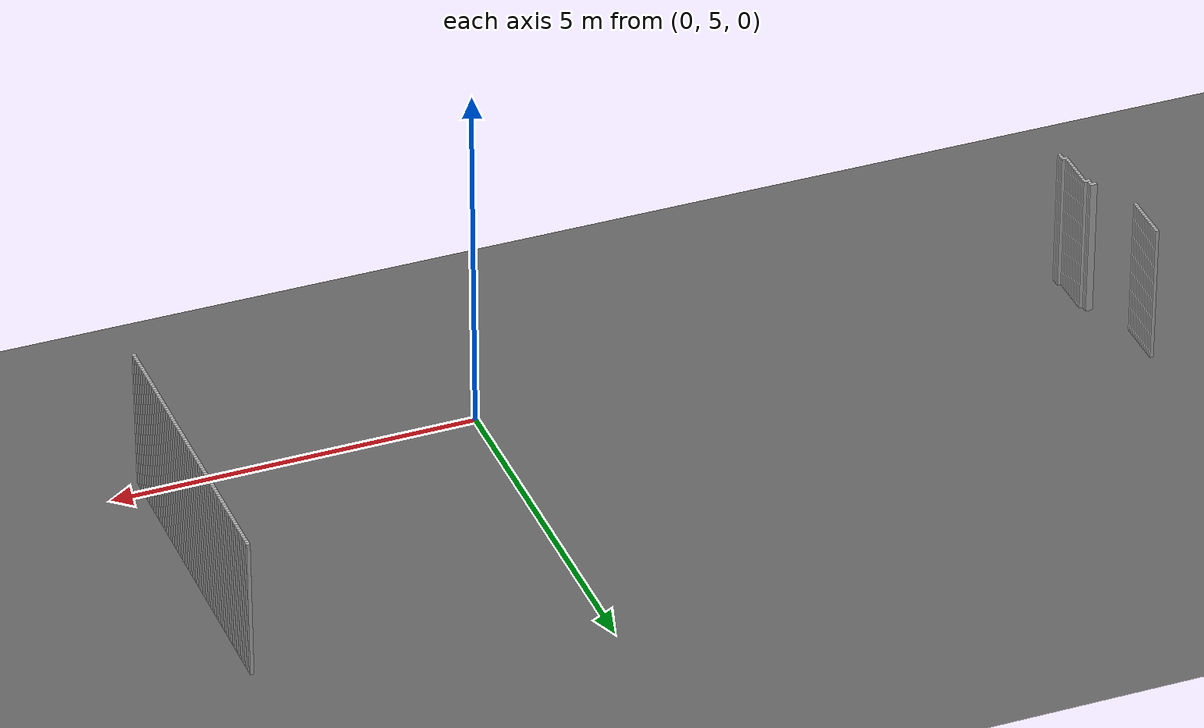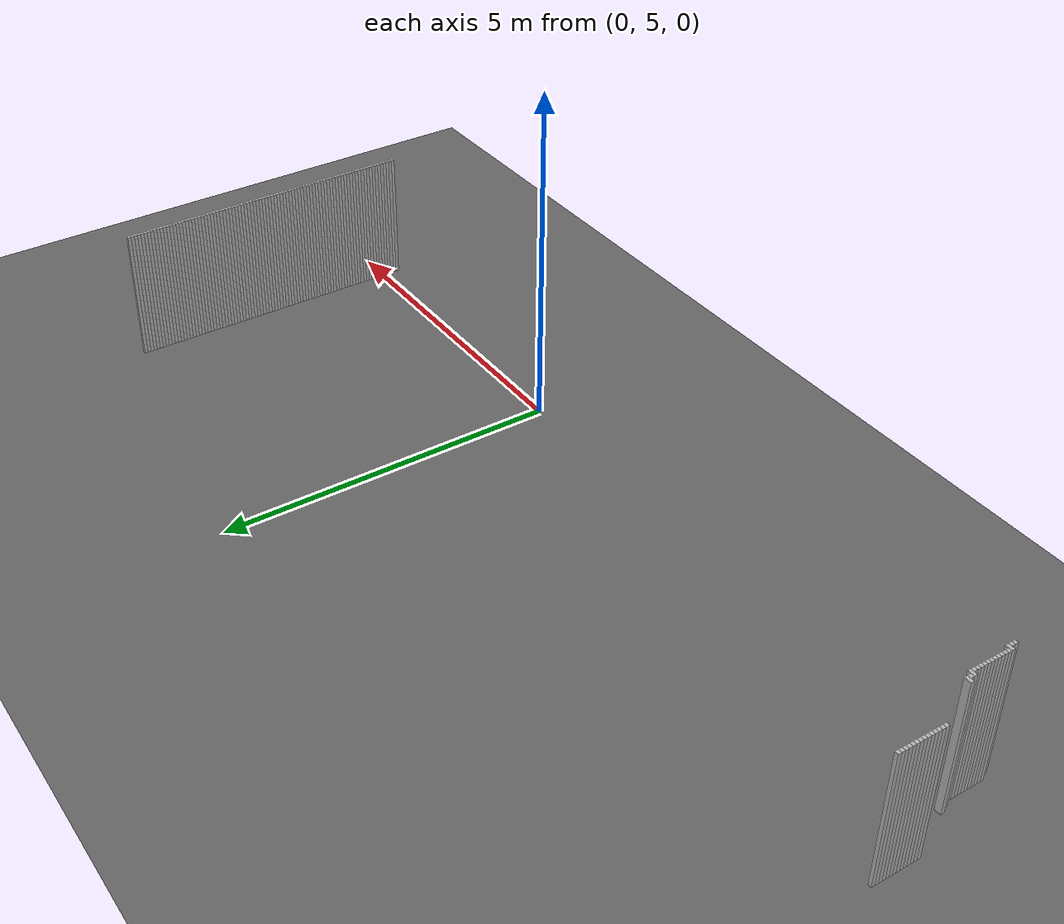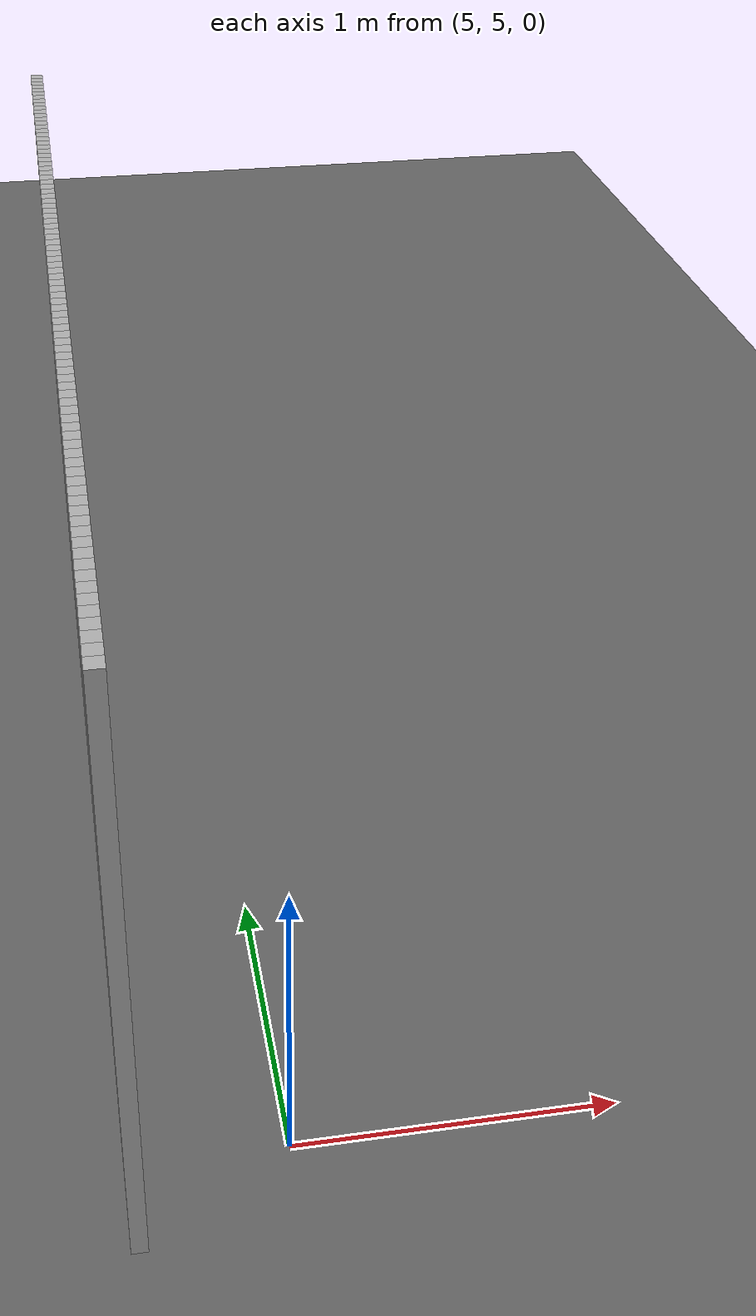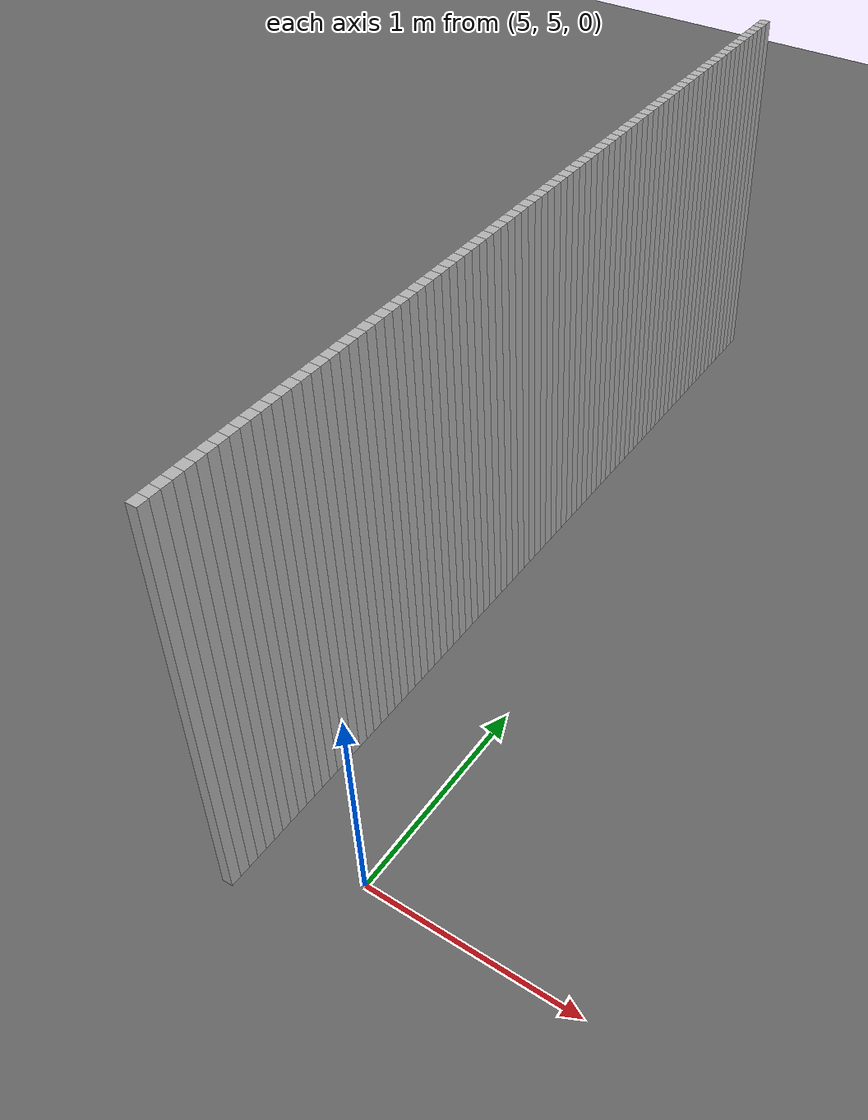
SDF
<sdf version="1.8">
 <world name="real_map">
  <model name="ground">
   <static>true</static>
   <link name="l">
    <collision name="c"><geometry><plane><normal>0 0 1</normal><size>100 100</size></plane></geometry></collision>
    <visual name="v">
     <geometry><plane><normal>0 0 1</normal><size>100 100</size></plane></geometry>
     <material><ambient>0.3 0.3 0.3 1</ambient><diffuse>0.4 0.4 0.4 1</diffuse></material>
    </visual>
   </link>
  </model>
  <model name="walls">
   <static>true</static>
   <link name="w480">
    <pose>4.534 9.142 1.000 0 0 0</pose>
    <collision name="c"><geometry><box><size>0.050 0.050 2.000</size></box></geometry></collision>
    <visual name="v">
     <geometry><box><size>0.050 0.050 2.000</size></box></geometry>
     <material><ambient>0.7 0.7 0.7 1</ambient><diffuse>0.7 0.7 0.7 1</diffuse></material>
    </visual>
   </link>
   <link name="w482">
    <pose>4.534 9.092 1.000 0 0 0</pose>
    <collision name="c"><geometry><box><size>0.050 0.050 2.000</size></box></geometry></collision>
    <visual name="v">
     <geometry><box><size>0.050 0.050 2.000</size></box></geometry>
     <material><ambient>0.7 0.7 0.7 1</ambient><diffuse>0.7 0.7 0.7 1</diffuse></material>
    </visual>
   </link>
   <link name="w484">
    <pose>4.534 9.042 1.000 0 0 0</pose>
    <collision name="c"><geometry><box><size>0.050 0.050 2.000</size></box></geometry></collision>
    <visual name="v">
     <geometry><box><size>0.050 0.050 2.000</size></box></geometry>
     <material><ambient>0.7 0.7 0.7 1</ambient><diffuse>0.7 0.7 0.7 1</diffuse></material>
    </visual>
   </link>
   <link name="w486">
    <pose>4.534 8.992 1.000 0 0 0</pose>
    <collision name="c"><geometry><box><size>0.050 0.050 2.000</size></box></geometry></collision>
    <visual name="v">
     <geometry><box><size>0.050 0.050 2.000</size></box></geometry>
     <material><ambient>0.7 0.7 0.7 1</ambient><diffuse>0.7 0.7 0.7 1</diffuse></material>
    </visual>
   </link>
   <link name="w488">
    <pose>4.534 8.942 1.000 0 0 0</pose>
    <collision name="c"><geometry><box><size>0.050 0.050 2.000</size></box></geometry></collision>
    <visual name="v">
     <geometry><box><size>0.050 0.050 2.000</size></box></geometry>
     <material><ambient>0.7 0.7 0.7 1</ambient><diffuse>0.7 0.7 0.7 1</diffuse></material>
    </visual>
   </link>
   <link name="w490">
    <pose>4.534 8.892 1.000 0 0 0</pose>
    <collision name="c"><geometry><box><size>0.050 0.050 2.000</size></box></geometry></collision>
    <visual name="v">
     <geometry><box><size>0.050 0.050 2.000</size></box></geometry>
     <material><ambient>0.7 0.7 0.7 1</ambient><diffuse>0.7 0.7 0.7 1</diffuse></material>
    </visual>
   </link>
   <link name="w492">
    <pose>4.534 8.842 1.000 0 0 0</pose>
    <collision name="c"><geometry><box><size>0.050 0.050 2.000</size></box></geometry></collision>
    <visual name="v">
     <geometry><box><size>0.050 0.050 2.000</size></box></geometry>
     <material><ambient>0.7 0.7 0.7 1</ambient><diffuse>0.7 0.7 0.7 1</diffuse></material>
    </visual>
   </link>
   <link name="w495">
    <pose>4.534 8.792 1.000 0 0 0</pose>
    <collision name="c"><geometry><box><size>0.050 0.050 2.000</size></box></geometry></collision>
    <visual name="v">
     <geometry><box><size>0.050 0.050 2.000</size></box></geometry>
     <material><ambient>0.7 0.7 0.7 1</ambient><diffuse>0.7 0.7 0.7 1</diffuse></material>
    </visual>
   </link>
   <link name="w500">
    <pose>4.534 8.742 1.000 0 0 0</pose>
    <collision name="c"><geometry><box><size>0.050 0.050 2.000</size></box></geometry></collision>
    <visual name="v">
     <geometry><box><size>0.050 0.050 2.000</size></box></geometry>
     <material><ambient>0.7 0.7 0.7 1</ambient><diffuse>0.7 0.7 0.7 1</diffuse></material>
    </visual>
   </link>
   <link name="w505">
    <pose>4.534 8.692 1.000 0 0 0</pose>
    <collision name="c"><geometry><box><size>0.050 0.050 2.000</size></box></geometry></collision>
    <visual name="v">
     <geometry><box><size>0.050 0.050 2.000</size></box></geometry>
     <material><ambient>0.7 0.7 0.7 1</ambient><diffuse>0.7 0.7 0.7 1</diffuse></material>
    </visual>
   </link>
   <link name="w510">
    <pose>4.534 8.642 1.000 0 0 0</pose>
    <collision name="c"><geometry><box><size>0.050 0.050 2.000</size></box></geometry></collision>
    <visual name="v">
     <geometry><box><size>0.050 0.050 2.000</size></box></geometry>
     <material><ambient>0.7 0.7 0.7 1</ambient><diffuse>0.7 0.7 0.7 1</diffuse></material>
    </visual>
   </link>
   <link name="w514">
    <pose>4.534 8.592 1.000 0 0 0</pose>
    <collision name="c"><geometry><box><size>0.050 0.050 2.000</size></box></geometry></collision>
    <visual name="v">
     <geometry><box><size>0.050 0.050 2.000</size></box></geometry>
     <material><ambient>0.7 0.7 0.7 1</ambient><diffuse>0.7 0.7 0.7 1</diffuse></material>
    </visual>
   </link>
   <link name="w518">
    <pose>4.534 8.542 1.000 0 0 0</pose>
    <collision name="c"><geometry><box><size>0.050 0.050 2.000</size></box></geometry></collision>
    <visual name="v">
     <geometry><box><size>0.050 0.050 2.000</size></box></geometry>
     <material><ambient>0.7 0.7 0.7 1</ambient><diffuse>0.7 0.7 0.7 1</diffuse></material>
    </visual>
   </link>
   <link name="w522">
    <pose>4.534 8.492 1.000 0 0 0</pose>
    <collision name="c"><geometry><box><size>0.050 0.050 2.000</size></box></geometry></collision>
    <visual name="v">
     <geometry><box><size>0.050 0.050 2.000</size></box></geometry>
     <material><ambient>0.7 0.7 0.7 1</ambient><diffuse>0.7 0.7 0.7 1</diffuse></material>
    </visual>
   </link>
   <link name="w526">
    <pose>4.534 8.442 1.000 0 0 0</pose>
    <collision name="c"><geometry><box><size>0.050 0.050 2.000</size></box></geometry></collision>
    <visual name="v">
     <geometry><box><size>0.050 0.050 2.000</size></box></geometry>
     <material><ambient>0.7 0.7 0.7 1</ambient><diffuse>0.7 0.7 0.7 1</diffuse></material>
    </visual>
   </link>
   <link name="w530">
    <pose>4.534 8.392 1.000 0 0 0</pose>
    <collision name="c"><geometry><box><size>0.050 0.050 2.000</size></box></geometry></collision>
    <visual name="v">
     <geometry><box><size>0.050 0.050 2.000</size></box></geometry>
     <material><ambient>0.7 0.7 0.7 1</ambient><diffuse>0.7 0.7 0.7 1</diffuse></material>
    </visual>
   </link>
   <link name="w534">
    <pose>4.534 8.342 1.000 0 0 0</pose>
    <collision name="c"><geometry><box><size>0.050 0.050 2.000</size></box></geometry></collision>
    <visual name="v">
     <geometry><box><size>0.050 0.050 2.000</size></box></geometry>
     <material><ambient>0.7 0.7 0.7 1</ambient><diffuse>0.7 0.7 0.7 1</diffuse></material>
    </visual>
   </link>
   <link name="w538">
    <pose>4.534 8.292 1.000 0 0 0</pose>
    <collision name="c"><geometry><box><size>0.050 0.050 2.000</size></box></geometry></collision>
    <visual name="v">
     <geometry><box><size>0.050 0.050 2.000</size></box></geometry>
     <material><ambient>0.7 0.7 0.7 1</ambient><diffuse>0.7 0.7 0.7 1</diffuse></material>
    </visual>
   </link>
   <link name="w542">
    <pose>4.534 8.242 1.000 0 0 0</pose>
    <collision name="c"><geometry><box><size>0.050 0.050 2.000</size></box></geometry></collision>
    <visual name="v">
     <geometry><box><size>0.050 0.050 2.000</size></box></geometry>
     <material><ambient>0.7 0.7 0.7 1</ambient><diffuse>0.7 0.7 0.7 1</diffuse></material>
    </visual>
   </link>
   <link name="w546">
    <pose>4.534 8.192 1.000 0 0 0</pose>
    <collision name="c"><geometry><box><size>0.050 0.050 2.000</size></box></geometry></collision>
    <visual name="v">
     <geometry><box><size>0.050 0.050 2.000</size></box></geometry>
     <material><ambient>0.7 0.7 0.7 1</ambient><diffuse>0.7 0.7 0.7 1</diffuse></material>
    </visual>
   </link>
   <link name="w550">
    <pose>4.534 8.142 1.000 0 0 0</pose>
    <collision name="c"><geometry><box><size>0.050 0.050 2.000</size></box></geometry></collision>
    <visual name="v">
     <geometry><box><size>0.050 0.050 2.000</size></box></geometry>
     <material><ambient>0.7 0.7 0.7 1</ambient><diffuse>0.7 0.7 0.7 1</diffuse></material>
    </visual>
   </link>
   <link name="w554">
    <pose>4.534 8.092 1.000 0 0 0</pose>
    <collision name="c"><geometry><box><size>0.050 0.050 2.000</size></box></geometry></collision>
    <visual name="v">
     <geometry><box><size>0.050 0.050 2.000</size></box></geometry>
     <material><ambient>0.7 0.7 0.7 1</ambient><diffuse>0.7 0.7 0.7 1</diffuse></material>
    </visual>
   </link>
   <link name="w558">
    <pose>4.534 8.042 1.000 0 0 0</pose>
    <collision name="c"><geometry><box><size>0.050 0.050 2.000</size></box></geometry></collision>
    <visual name="v">
     <geometry><box><size>0.050 0.050 2.000</size></box></geometry>
     <material><ambient>0.7 0.7 0.7 1</ambient><diffuse>0.7 0.7 0.7 1</diffuse></material>
    </visual>
   </link>
   <link name="w562">
    <pose>4.534 7.992 1.000 0 0 0</pose>
    <collision name="c"><geometry><box><size>0.050 0.050 2.000</size></box></geometry></collision>
    <visual name="v">
     <geometry><box><size>0.050 0.050 2.000</size></box></geometry>
     <material><ambient>0.7 0.7 0.7 1</ambient><diffuse>0.7 0.7 0.7 1</diffuse></material>
    </visual>
   </link>
   <link name="w566">
    <pose>4.534 7.942 1.000 0 0 0</pose>
    <collision name="c"><geometry><box><size>0.050 0.050 2.000</size></box></geometry></collision>
    <visual name="v">
     <geometry><box><size>0.050 0.050 2.000</size></box></geometry>
     <material><ambient>0.7 0.7 0.7 1</ambient><diffuse>0.7 0.7 0.7 1</diffuse></material>
    </visual>
   </link>
   <link name="w570">
    <pose>4.534 7.892 1.000 0 0 0</pose>
    <collision name="c"><geometry><box><size>0.050 0.050 2.000</size></box></geometry></collision>
    <visual name="v">
     <geometry><box><size>0.050 0.050 2.000</size></box></geometry>
     <material><ambient>0.7 0.7 0.7 1</ambient><diffuse>0.7 0.7 0.7 1</diffuse></material>
    </visual>
   </link>
   <link name="w574">
    <pose>4.534 7.842 1.000 0 0 0</pose>
    <collision name="c"><geometry><box><size>0.050 0.050 2.000</size></box></geometry></collision>
    <visual name="v">
     <geometry><box><size>0.050 0.050 2.000</size></box></geometry>
     <material><ambient>0.7 0.7 0.7 1</ambient><diffuse>0.7 0.7 0.7 1</diffuse></material>
    </visual>
   </link>
   <link name="w578">
    <pose>4.534 7.792 1.000 0 0 0</pose>
    <collision name="c"><geometry><box><size>0.050 0.050 2.000</size></box></geometry></collision>
    <visual name="v">
     <geometry><box><size>0.050 0.050 2.000</size></box></geometry>
     <material><ambient>0.7 0.7 0.7 1</ambient><diffuse>0.7 0.7 0.7 1</diffuse></material>
    </visual>
   </link>
   <link name="w582">
    <pose>4.534 7.742 1.000 0 0 0</pose>
    <collision name="c"><geometry><box><size>0.050 0.050 2.000</size></box></geometry></collision>
    <visual name="v">
     <geometry><box><size>0.050 0.050 2.000</size></box></geometry>
     <material><ambient>0.7 0.7 0.7 1</ambient><diffuse>0.7 0.7 0.7 1</diffuse></material>
    </visual>
   </link>
   <link name="w586">
    <pose>4.534 7.692 1.000 0 0 0</pose>
    <collision name="c"><geometry><box><size>0.050 0.050 2.000</size></box></geometry></collision>
    <visual name="v">
     <geometry><box><size>0.050 0.050 2.000</size></box></geometry>
     <material><ambient>0.7 0.7 0.7 1</ambient><diffuse>0.7 0.7 0.7 1</diffuse></material>
    </visual>
   </link>
   <link name="w590">
    <pose>4.534 7.642 1.000 0 0 0</pose>
    <collision name="c"><geometry><box><size>0.050 0.050 2.000</size></box></geometry></collision>
    <visual name="v">
     <geometry><box><size>0.050 0.050 2.000</size></box></geometry>
     <material><ambient>0.7 0.7 0.7 1</ambient><diffuse>0.7 0.7 0.7 1</diffuse></material>
    </visual>
   </link>
   <link name="w594">
    <pose>4.534 7.592 1.000 0 0 0</pose>
    <collision name="c"><geometry><box><size>0.050 0.050 2.000</size></box></geometry></collision>
    <visual name="v">
     <geometry><box><size>0.050 0.050 2.000</size></box></geometry>
     <material><ambient>0.7 0.7 0.7 1</ambient><diffuse>0.7 0.7 0.7 1</diffuse></material>
    </visual>
   </link>
   <link name="w598">
    <pose>4.534 7.542 1.000 0 0 0</pose>
    <collision name="c"><geometry><box><size>0.050 0.050 2.000</size></box></geometry></collision>
    <visual name="v">
     <geometry><box><size>0.050 0.050 2.000</size></box></geometry>
     <material><ambient>0.7 0.7 0.7 1</ambient><diffuse>0.7 0.7 0.7 1</diffuse></material>
    </visual>
   </link>
   <link name="w602">
    <pose>4.534 7.492 1.000 0 0 0</pose>
    <collision name="c"><geometry><box><size>0.050 0.050 2.000</size></box></geometry></collision>
    <visual name="v">
     <geometry><box><size>0.050 0.050 2.000</size></box></geometry>
     <material><ambient>0.7 0.7 0.7 1</ambient><diffuse>0.7 0.7 0.7 1</diffuse></material>
    </visual>
   </link>
   <link name="w606">
    <pose>4.534 7.442 1.000 0 0 0</pose>
    <collision name="c"><geometry><box><size>0.050 0.050 2.000</size></box></geometry></collision>
    <visual name="v">
     <geometry><box><size>0.050 0.050 2.000</size></box></geometry>
     <material><ambient>0.7 0.7 0.7 1</ambient><diffuse>0.7 0.7 0.7 1</diffuse></material>
    </visual>
   </link>
   <link name="w610">
    <pose>4.534 7.392 1.000 0 0 0</pose>
    <collision name="c"><geometry><box><size>0.050 0.050 2.000</size></box></geometry></collision>
    <visual name="v">
     <geometry><box><size>0.050 0.050 2.000</size></box></geometry>
     <material><ambient>0.7 0.7 0.7 1</ambient><diffuse>0.7 0.7 0.7 1</diffuse></material>
    </visual>
   </link>
   <link name="w615">
    <pose>4.534 7.342 1.000 0 0 0</pose>
    <collision name="c"><geometry><box><size>0.050 0.050 2.000</size></box></geometry></collision>
    <visual name="v">
     <geometry><box><size>0.050 0.050 2.000</size></box></geometry>
     <material><ambient>0.7 0.7 0.7 1</ambient><diffuse>0.7 0.7 0.7 1</diffuse></material>
    </visual>
   </link>
   <link name="w620">
    <pose>4.534 7.292 1.000 0 0 0</pose>
    <collision name="c"><geometry><box><size>0.050 0.050 2.000</size></box></geometry></collision>
    <visual name="v">
     <geometry><box><size>0.050 0.050 2.000</size></box></geometry>
     <material><ambient>0.7 0.7 0.7 1</ambient><diffuse>0.7 0.7 0.7 1</diffuse></material>
    </visual>
   </link>
   <link name="w625">
    <pose>4.534 7.242 1.000 0 0 0</pose>
    <collision name="c"><geometry><box><size>0.050 0.050 2.000</size></box></geometry></collision>
    <visual name="v">
     <geometry><box><size>0.050 0.050 2.000</size></box></geometry>
     <material><ambient>0.7 0.7 0.7 1</ambient><diffuse>0.7 0.7 0.7 1</diffuse></material>
    </visual>
   </link>
   <link name="w630">
    <pose>4.534 7.192 1.000 0 0 0</pose>
    <collision name="c"><geometry><box><size>0.050 0.050 2.000</size></box></geometry></collision>
    <visual name="v">
     <geometry><box><size>0.050 0.050 2.000</size></box></geometry>
     <material><ambient>0.7 0.7 0.7 1</ambient><diffuse>0.7 0.7 0.7 1</diffuse></material>
    </visual>
   </link>
   <link name="w635">
    <pose>4.534 7.142 1.000 0 0 0</pose>
    <collision name="c"><geometry><box><size>0.050 0.050 2.000</size></box></geometry></collision>
    <visual name="v">
     <geometry><box><size>0.050 0.050 2.000</size></box></geometry>
     <material><ambient>0.7 0.7 0.7 1</ambient><diffuse>0.7 0.7 0.7 1</diffuse></material>
    </visual>
   </link>
   <link name="w640">
    <pose>4.534 7.092 1.000 0 0 0</pose>
    <collision name="c"><geometry><box><size>0.050 0.050 2.000</size></box></geometry></collision>
    <visual name="v">
     <geometry><box><size>0.050 0.050 2.000</size></box></geometry>
     <material><ambient>0.7 0.7 0.7 1</ambient><diffuse>0.7 0.7 0.7 1</diffuse></material>
    </visual>
   </link>
   <link name="w645">
    <pose>4.534 7.042 1.000 0 0 0</pose>
    <collision name="c"><geometry><box><size>0.050 0.050 2.000</size></box></geometry></collision>
    <visual name="v">
     <geometry><box><size>0.050 0.050 2.000</size></box></geometry>
     <material><ambient>0.7 0.7 0.7 1</ambient><diffuse>0.7 0.7 0.7 1</diffuse></material>
    </visual>
   </link>
   <link name="w650">
    <pose>4.534 6.992 1.000 0 0 0</pose>
    <collision name="c"><geometry><box><size>0.050 0.050 2.000</size></box></geometry></collision>
    <visual name="v">
     <geometry><box><size>0.050 0.050 2.000</size></box></geometry>
     <material><ambient>0.7 0.7 0.7 1</ambient><diffuse>0.7 0.7 0.7 1</diffuse></material>
    </visual>
   </link>
   <link name="w655">
    <pose>4.534 6.942 1.000 0 0 0</pose>
    <collision name="c"><geometry><box><size>0.050 0.050 2.000</size></box></geometry></collision>
    <visual name="v">
     <geometry><box><size>0.050 0.050 2.000</size></box></geometry>
     <material><ambient>0.7 0.7 0.7 1</ambient><diffuse>0.7 0.7 0.7 1</diffuse></material>
    </visual>
   </link>
   <link name="w660">
    <pose>4.534 6.892 1.000 0 0 0</pose>
    <collision name="c"><geometry><box><size>0.050 0.050 2.000</size></box></geometry></collision>
    <visual name="v">
     <geometry><box><size>0.050 0.050 2.000</size></box></geometry>
     <material><ambient>0.7 0.7 0.7 1</ambient><diffuse>0.7 0.7 0.7 1</diffuse></material>
    </visual>
   </link>
   <link name="w664">
    <pose>-8.816 6.842 1.000 0 0 0</pose>
    <collision name="c"><geometry><box><size>0.050 0.050 2.000</size></box></geometry></collision>
    <visual name="v">
     <geometry><box><size>0.050 0.050 2.000</size></box></geometry>
     <material><ambient>0.7 0.7 0.7 1</ambient><diffuse>0.7 0.7 0.7 1</diffuse></material>
    </visual>
   </link>
   <link name="w665">
    <pose>4.534 6.842 1.000 0 0 0</pose>
    <collision name="c"><geometry><box><size>0.050 0.050 2.000</size></box></geometry></collision>
    <visual name="v">
     <geometry><box><size>0.050 0.050 2.000</size></box></geometry>
     <material><ambient>0.7 0.7 0.7 1</ambient><diffuse>0.7 0.7 0.7 1</diffuse></material>
    </visual>
   </link>
   <link name="w669">
    <pose>-8.816 6.792 1.000 0 0 0</pose>
    <collision name="c"><geometry><box><size>0.050 0.050 2.000</size></box></geometry></collision>
    <visual name="v">
     <geometry><box><size>0.050 0.050 2.000</size></box></geometry>
     <material><ambient>0.7 0.7 0.7 1</ambient><diffuse>0.7 0.7 0.7 1</diffuse></material>
    </visual>
   </link>
   <link name="w670">
    <pose>4.534 6.792 1.000 0 0 0</pose>
    <collision name="c"><geometry><box><size>0.050 0.050 2.000</size></box></geometry></collision>
    <visual name="v">
     <geometry><box><size>0.050 0.050 2.000</size></box></geometry>
     <material><ambient>0.7 0.7 0.7 1</ambient><diffuse>0.7 0.7 0.7 1</diffuse></material>
    </visual>
   </link>
   <link name="w674">
    <pose>-8.816 6.742 1.000 0 0 0</pose>
    <collision name="c"><geometry><box><size>0.050 0.050 2.000</size></box></geometry></collision>
    <visual name="v">
     <geometry><box><size>0.050 0.050 2.000</size></box></geometry>
     <material><ambient>0.7 0.7 0.7 1</ambient><diffuse>0.7 0.7 0.7 1</diffuse></material>
    </visual>
   </link>
   <link name="w675">
    <pose>4.534 6.742 1.000 0 0 0</pose>
    <collision name="c"><geometry><box><size>0.050 0.050 2.000</size></box></geometry></collision>
    <visual name="v">
     <geometry><box><size>0.050 0.050 2.000</size></box></geometry>
     <material><ambient>0.7 0.7 0.7 1</ambient><diffuse>0.7 0.7 0.7 1</diffuse></material>
    </visual>
   </link>
   <link name="w678">
    <pose>-8.816 6.692 1.000 0 0 0</pose>
    <collision name="c"><geometry><box><size>0.050 0.050 2.000</size></box></geometry></collision>
    <visual name="v">
     <geometry><box><size>0.050 0.050 2.000</size></box></geometry>
     <material><ambient>0.7 0.7 0.7 1</ambient><diffuse>0.7 0.7 0.7 1</diffuse></material>
    </visual>
   </link>
   <link name="w679">
    <pose>4.534 6.692 1.000 0 0 0</pose>
    <collision name="c"><geometry><box><size>0.050 0.050 2.000</size></box></geometry></collision>
    <visual name="v">
     <geometry><box><size>0.050 0.050 2.000</size></box></geometry>
     <material><ambient>0.7 0.7 0.7 1</ambient><diffuse>0.7 0.7 0.7 1</diffuse></material>
    </visual>
   </link>
   <link name="w682">
    <pose>-8.816 6.642 1.000 0 0 0</pose>
    <collision name="c"><geometry><box><size>0.050 0.050 2.000</size></box></geometry></collision>
    <visual name="v">
     <geometry><box><size>0.050 0.050 2.000</size></box></geometry>
     <material><ambient>0.7 0.7 0.7 1</ambient><diffuse>0.7 0.7 0.7 1</diffuse></material>
    </visual>
   </link>
   <link name="w683">
    <pose>4.534 6.642 1.000 0 0 0</pose>
    <collision name="c"><geometry><box><size>0.050 0.050 2.000</size></box></geometry></collision>
    <visual name="v">
     <geometry><box><size>0.050 0.050 2.000</size></box></geometry>
     <material><ambient>0.7 0.7 0.7 1</ambient><diffuse>0.7 0.7 0.7 1</diffuse></material>
    </visual>
   </link>
   <link name="w686">
    <pose>-8.816 6.592 1.000 0 0 0</pose>
    <collision name="c"><geometry><box><size>0.050 0.050 2.000</size></box></geometry></collision>
    <visual name="v">
     <geometry><box><size>0.050 0.050 2.000</size></box></geometry>
     <material><ambient>0.7 0.7 0.7 1</ambient><diffuse>0.7 0.7 0.7 1</diffuse></material>
    </visual>
   </link>
   <link name="w687">
    <pose>4.534 6.592 1.000 0 0 0</pose>
    <collision name="c"><geometry><box><size>0.050 0.050 2.000</size></box></geometry></collision>
    <visual name="v">
     <geometry><box><size>0.050 0.050 2.000</size></box></geometry>
     <material><ambient>0.7 0.7 0.7 1</ambient><diffuse>0.7 0.7 0.7 1</diffuse></material>
    </visual>
   </link>
   <link name="w690">
    <pose>-8.816 6.542 1.000 0 0 0</pose>
    <collision name="c"><geometry><box><size>0.050 0.050 2.000</size></box></geometry></collision>
    <visual name="v">
     <geometry><box><size>0.050 0.050 2.000</size></box></geometry>
     <material><ambient>0.7 0.7 0.7 1</ambient><diffuse>0.7 0.7 0.7 1</diffuse></material>
    </visual>
   </link>
   <link name="w691">
    <pose>4.534 6.542 1.000 0 0 0</pose>
    <collision name="c"><geometry><box><size>0.050 0.050 2.000</size></box></geometry></collision>
    <visual name="v">
     <geometry><box><size>0.050 0.050 2.000</size></box></geometry>
     <material><ambient>0.7 0.7 0.7 1</ambient><diffuse>0.7 0.7 0.7 1</diffuse></material>
    </visual>
   </link>
   <link name="w694">
    <pose>-8.816 6.492 1.000 0 0 0</pose>
    <collision name="c"><geometry><box><size>0.050 0.050 2.000</size></box></geometry></collision>
    <visual name="v">
     <geometry><box><size>0.050 0.050 2.000</size></box></geometry>
     <material><ambient>0.7 0.7 0.7 1</ambient><diffuse>0.7 0.7 0.7 1</diffuse></material>
    </visual>
   </link>
   <link name="w695">
    <pose>4.534 6.492 1.000 0 0 0</pose>
    <collision name="c"><geometry><box><size>0.050 0.050 2.000</size></box></geometry></collision>
    <visual name="v">
     <geometry><box><size>0.050 0.050 2.000</size></box></geometry>
     <material><ambient>0.7 0.7 0.7 1</ambient><diffuse>0.7 0.7 0.7 1</diffuse></material>
    </visual>
   </link>
   <link name="w698">
    <pose>-8.816 6.442 1.000 0 0 0</pose>
    <collision name="c"><geometry><box><size>0.050 0.050 2.000</size></box></geometry></collision>
    <visual name="v">
     <geometry><box><size>0.050 0.050 2.000</size></box></geometry>
     <material><ambient>0.7 0.7 0.7 1</ambient><diffuse>0.7 0.7 0.7 1</diffuse></material>
    </visual>
   </link>
   <link name="w699">
    <pose>4.534 6.442 1.000 0 0 0</pose>
    <collision name="c"><geometry><box><size>0.050 0.050 2.000</size></box></geometry></collision>
    <visual name="v">
     <geometry><box><size>0.050 0.050 2.000</size></box></geometry>
     <material><ambient>0.7 0.7 0.7 1</ambient><diffuse>0.7 0.7 0.7 1</diffuse></material>
    </visual>
   </link>
   <link name="w702">
    <pose>-8.816 6.392 1.000 0 0 0</pose>
    <collision name="c"><geometry><box><size>0.050 0.050 2.000</size></box></geometry></collision>
    <visual name="v">
     <geometry><box><size>0.050 0.050 2.000</size></box></geometry>
     <material><ambient>0.7 0.7 0.7 1</ambient><diffuse>0.7 0.7 0.7 1</diffuse></material>
    </visual>
   </link>
   <link name="w703">
    <pose>4.534 6.392 1.000 0 0 0</pose>
    <collision name="c"><geometry><box><size>0.050 0.050 2.000</size></box></geometry></collision>
    <visual name="v">
     <geometry><box><size>0.050 0.050 2.000</size></box></geometry>
     <material><ambient>0.7 0.7 0.7 1</ambient><diffuse>0.7 0.7 0.7 1</diffuse></material>
    </visual>
   </link>
   <link name="w706">
    <pose>-8.816 6.342 1.000 0 0 0</pose>
    <collision name="c"><geometry><box><size>0.050 0.050 2.000</size></box></geometry></collision>
    <visual name="v">
     <geometry><box><size>0.050 0.050 2.000</size></box></geometry>
     <material><ambient>0.7 0.7 0.7 1</ambient><diffuse>0.7 0.7 0.7 1</diffuse></material>
    </visual>
   </link>
   <link name="w707">
    <pose>4.534 6.342 1.000 0 0 0</pose>
    <collision name="c"><geometry><box><size>0.050 0.050 2.000</size></box></geometry></collision>
    <visual name="v">
     <geometry><box><size>0.050 0.050 2.000</size></box></geometry>
     <material><ambient>0.7 0.7 0.7 1</ambient><diffuse>0.7 0.7 0.7 1</diffuse></material>
    </visual>
   </link>
   <link name="w710">
    <pose>-8.816 6.292 1.000 0 0 0</pose>
    <collision name="c"><geometry><box><size>0.050 0.050 2.000</size></box></geometry></collision>
    <visual name="v">
     <geometry><box><size>0.050 0.050 2.000</size></box></geometry>
     <material><ambient>0.7 0.7 0.7 1</ambient><diffuse>0.7 0.7 0.7 1</diffuse></material>
    </visual>
   </link>
   <link name="w711">
    <pose>4.534 6.292 1.000 0 0 0</pose>
    <collision name="c"><geometry><box><size>0.050 0.050 2.000</size></box></geometry></collision>
    <visual name="v">
     <geometry><box><size>0.050 0.050 2.000</size></box></geometry>
     <material><ambient>0.7 0.7 0.7 1</ambient><diffuse>0.7 0.7 0.7 1</diffuse></material>
    </visual>
   </link>
   <link name="w714">
    <pose>-8.816 6.242 1.000 0 0 0</pose>
    <collision name="c"><geometry><box><size>0.050 0.050 2.000</size></box></geometry></collision>
    <visual name="v">
     <geometry><box><size>0.050 0.050 2.000</size></box></geometry>
     <material><ambient>0.7 0.7 0.7 1</ambient><diffuse>0.7 0.7 0.7 1</diffuse></material>
    </visual>
   </link>
   <link name="w715">
    <pose>4.534 6.242 1.000 0 0 0</pose>
    <collision name="c"><geometry><box><size>0.050 0.050 2.000</size></box></geometry></collision>
    <visual name="v">
     <geometry><box><size>0.050 0.050 2.000</size></box></geometry>
     <material><ambient>0.7 0.7 0.7 1</ambient><diffuse>0.7 0.7 0.7 1</diffuse></material>
    </visual>
   </link>
   <link name="w718">
    <pose>-8.816 6.192 1.000 0 0 0</pose>
    <collision name="c"><geometry><box><size>0.050 0.050 2.000</size></box></geometry></collision>
    <visual name="v">
     <geometry><box><size>0.050 0.050 2.000</size></box></geometry>
     <material><ambient>0.7 0.7 0.7 1</ambient><diffuse>0.7 0.7 0.7 1</diffuse></material>
    </visual>
   </link>
   <link name="w719">
    <pose>4.534 6.192 1.000 0 0 0</pose>
    <collision name="c"><geometry><box><size>0.050 0.050 2.000</size></box></geometry></collision>
    <visual name="v">
     <geometry><box><size>0.050 0.050 2.000</size></box></geometry>
     <material><ambient>0.7 0.7 0.7 1</ambient><diffuse>0.7 0.7 0.7 1</diffuse></material>
    </visual>
   </link>
   <link name="w723">
    <pose>4.534 6.142 1.000 0 0 0</pose>
    <collision name="c"><geometry><box><size>0.050 0.050 2.000</size></box></geometry></collision>
    <visual name="v">
     <geometry><box><size>0.050 0.050 2.000</size></box></geometry>
     <material><ambient>0.7 0.7 0.7 1</ambient><diffuse>0.7 0.7 0.7 1</diffuse></material>
    </visual>
   </link>
   <link name="w727">
    <pose>4.534 6.092 1.000 0 0 0</pose>
    <collision name="c"><geometry><box><size>0.050 0.050 2.000</size></box></geometry></collision>
    <visual name="v">
     <geometry><box><size>0.050 0.050 2.000</size></box></geometry>
     <material><ambient>0.7 0.7 0.7 1</ambient><diffuse>0.7 0.7 0.7 1</diffuse></material>
    </visual>
   </link>
   <link name="w731">
    <pose>4.534 6.042 1.000 0 0 0</pose>
    <collision name="c"><geometry><box><size>0.050 0.050 2.000</size></box></geometry></collision>
    <visual name="v">
     <geometry><box><size>0.050 0.050 2.000</size></box></geometry>
     <material><ambient>0.7 0.7 0.7 1</ambient><diffuse>0.7 0.7 0.7 1</diffuse></material>
    </visual>
   </link>
   <link name="w735">
    <pose>4.534 5.992 1.000 0 0 0</pose>
    <collision name="c"><geometry><box><size>0.050 0.050 2.000</size></box></geometry></collision>
    <visual name="v">
     <geometry><box><size>0.050 0.050 2.000</size></box></geometry>
     <material><ambient>0.7 0.7 0.7 1</ambient><diffuse>0.7 0.7 0.7 1</diffuse></material>
    </visual>
   </link>
   <link name="w739">
    <pose>4.534 5.942 1.000 0 0 0</pose>
    <collision name="c"><geometry><box><size>0.050 0.050 2.000</size></box></geometry></collision>
    <visual name="v">
     <geometry><box><size>0.050 0.050 2.000</size></box></geometry>
     <material><ambient>0.7 0.7 0.7 1</ambient><diffuse>0.7 0.7 0.7 1</diffuse></material>
    </visual>
   </link>
   <link name="w743">
    <pose>4.534 5.892 1.000 0 0 0</pose>
    <collision name="c"><geometry><box><size>0.050 0.050 2.000</size></box></geometry></collision>
    <visual name="v">
     <geometry><box><size>0.050 0.050 2.000</size></box></geometry>
     <material><ambient>0.7 0.7 0.7 1</ambient><diffuse>0.7 0.7 0.7 1</diffuse></material>
    </visual>
   </link>
   <link name="w747">
    <pose>4.534 5.842 1.000 0 0 0</pose>
    <collision name="c"><geometry><box><size>0.050 0.050 2.000</size></box></geometry></collision>
    <visual name="v">
     <geometry><box><size>0.050 0.050 2.000</size></box></geometry>
     <material><ambient>0.7 0.7 0.7 1</ambient><diffuse>0.7 0.7 0.7 1</diffuse></material>
    </visual>
   </link>
   <link name="w751">
    <pose>4.534 5.792 1.000 0 0 0</pose>
    <collision name="c"><geometry><box><size>0.050 0.050 2.000</size></box></geometry></collision>
    <visual name="v">
     <geometry><box><size>0.050 0.050 2.000</size></box></geometry>
     <material><ambient>0.7 0.7 0.7 1</ambient><diffuse>0.7 0.7 0.7 1</diffuse></material>
    </visual>
   </link>
   <link name="w755">
    <pose>4.534 5.742 1.000 0 0 0</pose>
    <collision name="c"><geometry><box><size>0.050 0.050 2.000</size></box></geometry></collision>
    <visual name="v">
     <geometry><box><size>0.050 0.050 2.000</size></box></geometry>
     <material><ambient>0.7 0.7 0.7 1</ambient><diffuse>0.7 0.7 0.7 1</diffuse></material>
    </visual>
   </link>
   <link name="w759">
    <pose>4.534 5.692 1.000 0 0 0</pose>
    <collision name="c"><geometry><box><size>0.050 0.050 2.000</size></box></geometry></collision>
    <visual name="v">
     <geometry><box><size>0.050 0.050 2.000</size></box></geometry>
     <material><ambient>0.7 0.7 0.7 1</ambient><diffuse>0.7 0.7 0.7 1</diffuse></material>
    </visual>
   </link>
   <link name="w763">
    <pose>4.534 5.642 1.000 0 0 0</pose>
    <collision name="c"><geometry><box><size>0.050 0.050 2.000</size></box></geometry></collision>
    <visual name="v">
     <geometry><box><size>0.050 0.050 2.000</size></box></geometry>
     <material><ambient>0.7 0.7 0.7 1</ambient><diffuse>0.7 0.7 0.7 1</diffuse></material>
    </visual>
   </link>
   <link name="w767">
    <pose>4.534 5.592 1.000 0 0 0</pose>
    <collision name="c"><geometry><box><size>0.050 0.050 2.000</size></box></geometry></collision>
    <visual name="v">
     <geometry><box><size>0.050 0.050 2.000</size></box></geometry>
     <material><ambient>0.7 0.7 0.7 1</ambient><diffuse>0.7 0.7 0.7 1</diffuse></material>
    </visual>
   </link>
   <link name="w771">
    <pose>-8.491 5.542 1.000 0 0 0</pose>
    <collision name="c"><geometry><box><size>0.100 0.050 2.000</size></box></geometry></collision>
    <visual name="v">
     <geometry><box><size>0.100 0.050 2.000</size></box></geometry>
     <material><ambient>0.7 0.7 0.7 1</ambient><diffuse>0.7 0.7 0.7 1</diffuse></material>
    </visual>
   </link>
   <link name="w772">
    <pose>4.534 5.542 1.000 0 0 0</pose>
    <collision name="c"><geometry><box><size>0.050 0.050 2.000</size></box></geometry></collision>
    <visual name="v">
     <geometry><box><size>0.050 0.050 2.000</size></box></geometry>
     <material><ambient>0.7 0.7 0.7 1</ambient><diffuse>0.7 0.7 0.7 1</diffuse></material>
    </visual>
   </link>
   <link name="w776">
    <pose>-8.466 5.492 1.000 0 0 0</pose>
    <collision name="c"><geometry><box><size>0.050 0.050 2.000</size></box></geometry></collision>
    <visual name="v">
     <geometry><box><size>0.050 0.050 2.000</size></box></geometry>
     <material><ambient>0.7 0.7 0.7 1</ambient><diffuse>0.7 0.7 0.7 1</diffuse></material>
    </visual>
   </link>
   <link name="w777">
    <pose>4.534 5.492 1.000 0 0 0</pose>
    <collision name="c"><geometry><box><size>0.050 0.050 2.000</size></box></geometry></collision>
    <visual name="v">
     <geometry><box><size>0.050 0.050 2.000</size></box></geometry>
     <material><ambient>0.7 0.7 0.7 1</ambient><diffuse>0.7 0.7 0.7 1</diffuse></material>
    </visual>
   </link>
   <link name="w780">
    <pose>-8.441 5.442 1.000 0 0 0</pose>
    <collision name="c"><geometry><box><size>0.100 0.050 2.000</size></box></geometry></collision>
    <visual name="v">
     <geometry><box><size>0.100 0.050 2.000</size></box></geometry>
     <material><ambient>0.7 0.7 0.7 1</ambient><diffuse>0.7 0.7 0.7 1</diffuse></material>
    </visual>
   </link>
   <link name="w781">
    <pose>4.534 5.442 1.000 0 0 0</pose>
    <collision name="c"><geometry><box><size>0.050 0.050 2.000</size></box></geometry></collision>
    <visual name="v">
     <geometry><box><size>0.050 0.050 2.000</size></box></geometry>
     <material><ambient>0.7 0.7 0.7 1</ambient><diffuse>0.7 0.7 0.7 1</diffuse></material>
    </visual>
   </link>
   <link name="w784">
    <pose>-8.416 5.392 1.000 0 0 0</pose>
    <collision name="c"><geometry><box><size>0.050 0.050 2.000</size></box></geometry></collision>
    <visual name="v">
     <geometry><box><size>0.050 0.050 2.000</size></box></geometry>
     <material><ambient>0.7 0.7 0.7 1</ambient><diffuse>0.7 0.7 0.7 1</diffuse></material>
    </visual>
   </link>
   <link name="w785">
    <pose>4.534 5.392 1.000 0 0 0</pose>
    <collision name="c"><geometry><box><size>0.050 0.050 2.000</size></box></geometry></collision>
    <visual name="v">
     <geometry><box><size>0.050 0.050 2.000</size></box></geometry>
     <material><ambient>0.7 0.7 0.7 1</ambient><diffuse>0.7 0.7 0.7 1</diffuse></material>
    </visual>
   </link>
   <link name="w788">
    <pose>-8.416 5.342 1.000 0 0 0</pose>
    <collision name="c"><geometry><box><size>0.050 0.050 2.000</size></box></geometry></collision>
    <visual name="v">
     <geometry><box><size>0.050 0.050 2.000</size></box></geometry>
     <material><ambient>0.7 0.7 0.7 1</ambient><diffuse>0.7 0.7 0.7 1</diffuse></material>
    </visual>
   </link>
   <link name="w789">
    <pose>4.534 5.342 1.000 0 0 0</pose>
    <collision name="c"><geometry><box><size>0.050 0.050 2.000</size></box></geometry></collision>
    <visual name="v">
     <geometry><box><size>0.050 0.050 2.000</size></box></geometry>
     <material><ambient>0.7 0.7 0.7 1</ambient><diffuse>0.7 0.7 0.7 1</diffuse></material>
    </visual>
   </link>
   <link name="w792">
    <pose>-8.416 5.292 1.000 0 0 0</pose>
    <collision name="c"><geometry><box><size>0.050 0.050 2.000</size></box></geometry></collision>
    <visual name="v">
     <geometry><box><size>0.050 0.050 2.000</size></box></geometry>
     <material><ambient>0.7 0.7 0.7 1</ambient><diffuse>0.7 0.7 0.7 1</diffuse></material>
    </visual>
   </link>
   <link name="w793">
    <pose>4.534 5.292 1.000 0 0 0</pose>
    <collision name="c"><geometry><box><size>0.050 0.050 2.000</size></box></geometry></collision>
    <visual name="v">
     <geometry><box><size>0.050 0.050 2.000</size></box></geometry>
     <material><ambient>0.7 0.7 0.7 1</ambient><diffuse>0.7 0.7 0.7 1</diffuse></material>
    </visual>
   </link>
   <link name="w796">
    <pose>-8.416 5.242 1.000 0 0 0</pose>
    <collision name="c"><geometry><box><size>0.050 0.050 2.000</size></box></geometry></collision>
    <visual name="v">
     <geometry><box><size>0.050 0.050 2.000</size></box></geometry>
     <material><ambient>0.7 0.7 0.7 1</ambient><diffuse>0.7 0.7 0.7 1</diffuse></material>
    </visual>
   </link>
   <link name="w797">
    <pose>4.534 5.242 1.000 0 0 0</pose>
    <collision name="c"><geometry><box><size>0.050 0.050 2.000</size></box></geometry></collision>
    <visual name="v">
     <geometry><box><size>0.050 0.050 2.000</size></box></geometry>
     <material><ambient>0.7 0.7 0.7 1</ambient><diffuse>0.7 0.7 0.7 1</diffuse></material>
    </visual>
   </link>
   <link name="w800">
    <pose>-8.416 5.192 1.000 0 0 0</pose>
    <collision name="c"><geometry><box><size>0.050 0.050 2.000</size></box></geometry></collision>
    <visual name="v">
     <geometry><box><size>0.050 0.050 2.000</size></box></geometry>
     <material><ambient>0.7 0.7 0.7 1</ambient><diffuse>0.7 0.7 0.7 1</diffuse></material>
    </visual>
   </link>
   <link name="w801">
    <pose>4.534 5.192 1.000 0 0 0</pose>
    <collision name="c"><geometry><box><size>0.050 0.050 2.000</size></box></geometry></collision>
    <visual name="v">
     <geometry><box><size>0.050 0.050 2.000</size></box></geometry>
     <material><ambient>0.7 0.7 0.7 1</ambient><diffuse>0.7 0.7 0.7 1</diffuse></material>
    </visual>
   </link>
   <link name="w804">
    <pose>-8.416 5.142 1.000 0 0 0</pose>
    <collision name="c"><geometry><box><size>0.050 0.050 2.000</size></box></geometry></collision>
    <visual name="v">
     <geometry><box><size>0.050 0.050 2.000</size></box></geometry>
     <material><ambient>0.7 0.7 0.7 1</ambient><diffuse>0.7 0.7 0.7 1</diffuse></material>
    </visual>
   </link>
   <link name="w805">
    <pose>4.534 5.142 1.000 0 0 0</pose>
    <collision name="c"><geometry><box><size>0.050 0.050 2.000</size></box></geometry></collision>
    <visual name="v">
     <geometry><box><size>0.050 0.050 2.000</size></box></geometry>
     <material><ambient>0.7 0.7 0.7 1</ambient><diffuse>0.7 0.7 0.7 1</diffuse></material>
    </visual>
   </link>
   <link name="w808">
    <pose>-8.416 5.092 1.000 0 0 0</pose>
    <collision name="c"><geometry><box><size>0.050 0.050 2.000</size></box></geometry></collision>
    <visual name="v">
     <geometry><box><size>0.050 0.050 2.000</size></box></geometry>
     <material><ambient>0.7 0.7 0.7 1</ambient><diffuse>0.7 0.7 0.7 1</diffuse></material>
    </visual>
   </link>
   <link name="w809">
    <pose>4.534 5.092 1.000 0 0 0</pose>
    <collision name="c"><geometry><box><size>0.050 0.050 2.000</size></box></geometry></collision>
    <visual name="v">
     <geometry><box><size>0.050 0.050 2.000</size></box></geometry>
     <material><ambient>0.7 0.7 0.7 1</ambient><diffuse>0.7 0.7 0.7 1</diffuse></material>
    </visual>
   </link>
   <link name="w812">
    <pose>-8.416 5.042 1.000 0 0 0</pose>
    <collision name="c"><geometry><box><size>0.050 0.050 2.000</size></box></geometry></collision>
    <visual name="v">
     <geometry><box><size>0.050 0.050 2.000</size></box></geometry>
     <material><ambient>0.7 0.7 0.7 1</ambient><diffuse>0.7 0.7 0.7 1</diffuse></material>
    </visual>
   </link>
   <link name="w813">
    <pose>4.534 5.042 1.000 0 0 0</pose>
    <collision name="c"><geometry><box><size>0.050 0.050 2.000</size></box></geometry></collision>
    <visual name="v">
     <geometry><box><size>0.050 0.050 2.000</size></box></geometry>
     <material><ambient>0.7 0.7 0.7 1</ambient><diffuse>0.7 0.7 0.7 1</diffuse></material>
    </visual>
   </link>
   <link name="w816">
    <pose>-8.416 4.992 1.000 0 0 0</pose>
    <collision name="c"><geometry><box><size>0.050 0.050 2.000</size></box></geometry></collision>
    <visual name="v">
     <geometry><box><size>0.050 0.050 2.000</size></box></geometry>
     <material><ambient>0.7 0.7 0.7 1</ambient><diffuse>0.7 0.7 0.7 1</diffuse></material>
    </visual>
   </link>
   <link name="w817">
    <pose>4.534 4.992 1.000 0 0 0</pose>
    <collision name="c"><geometry><box><size>0.050 0.050 2.000</size></box></geometry></collision>
    <visual name="v">
     <geometry><box><size>0.050 0.050 2.000</size></box></geometry>
     <material><ambient>0.7 0.7 0.7 1</ambient><diffuse>0.7 0.7 0.7 1</diffuse></material>
    </visual>
   </link>
   <link name="w820">
    <pose>-8.416 4.942 1.000 0 0 0</pose>
    <collision name="c"><geometry><box><size>0.050 0.050 2.000</size></box></geometry></collision>
    <visual name="v">
     <geometry><box><size>0.050 0.050 2.000</size></box></geometry>
     <material><ambient>0.7 0.7 0.7 1</ambient><diffuse>0.7 0.7 0.7 1</diffuse></material>
    </visual>
   </link>
   <link name="w821">
    <pose>4.534 4.942 1.000 0 0 0</pose>
    <collision name="c"><geometry><box><size>0.050 0.050 2.000</size></box></geometry></collision>
    <visual name="v">
     <geometry><box><size>0.050 0.050 2.000</size></box></geometry>
     <material><ambient>0.7 0.7 0.7 1</ambient><diffuse>0.7 0.7 0.7 1</diffuse></material>
    </visual>
   </link>
   <link name="w824">
    <pose>-8.416 4.892 1.000 0 0 0</pose>
    <collision name="c"><geometry><box><size>0.050 0.050 2.000</size></box></geometry></collision>
    <visual name="v">
     <geometry><box><size>0.050 0.050 2.000</size></box></geometry>
     <material><ambient>0.7 0.7 0.7 1</ambient><diffuse>0.7 0.7 0.7 1</diffuse></material>
    </visual>
   </link>
   <link name="w825">
    <pose>4.534 4.892 1.000 0 0 0</pose>
    <collision name="c"><geometry><box><size>0.050 0.050 2.000</size></box></geometry></collision>
    <visual name="v">
     <geometry><box><size>0.050 0.050 2.000</size></box></geometry>
     <material><ambient>0.7 0.7 0.7 1</ambient><diffuse>0.7 0.7 0.7 1</diffuse></material>
    </visual>
   </link>
   <link name="w828">
    <pose>-8.391 4.842 1.000 0 0 0</pose>
    <collision name="c"><geometry><box><size>0.100 0.050 2.000</size></box></geometry></collision>
    <visual name="v">
     <geometry><box><size>0.100 0.050 2.000</size></box></geometry>
     <material><ambient>0.7 0.7 0.7 1</ambient><diffuse>0.7 0.7 0.7 1</diffuse></material>
    </visual>
   </link>
   <link name="w829">
    <pose>4.534 4.842 1.000 0 0 0</pose>
    <collision name="c"><geometry><box><size>0.050 0.050 2.000</size></box></geometry></collision>
    <visual name="v">
     <geometry><box><size>0.050 0.050 2.000</size></box></geometry>
     <material><ambient>0.7 0.7 0.7 1</ambient><diffuse>0.7 0.7 0.7 1</diffuse></material>
    </visual>
   </link>
   <link name="w832">
    <pose>-8.366 4.792 1.000 0 0 0</pose>
    <collision name="c"><geometry><box><size>0.050 0.050 2.000</size></box></geometry></collision>
    <visual name="v">
     <geometry><box><size>0.050 0.050 2.000</size></box></geometry>
     <material><ambient>0.7 0.7 0.7 1</ambient><diffuse>0.7 0.7 0.7 1</diffuse></material>
    </visual>
   </link>
   <link name="w833">
    <pose>4.534 4.792 1.000 0 0 0</pose>
    <collision name="c"><geometry><box><size>0.050 0.050 2.000</size></box></geometry></collision>
    <visual name="v">
     <geometry><box><size>0.050 0.050 2.000</size></box></geometry>
     <material><ambient>0.7 0.7 0.7 1</ambient><diffuse>0.7 0.7 0.7 1</diffuse></material>
    </visual>
   </link>
   <link name="w836">
    <pose>-8.366 4.742 1.000 0 0 0</pose>
    <collision name="c"><geometry><box><size>0.050 0.050 2.000</size></box></geometry></collision>
    <visual name="v">
     <geometry><box><size>0.050 0.050 2.000</size></box></geometry>
     <material><ambient>0.7 0.7 0.7 1</ambient><diffuse>0.7 0.7 0.7 1</diffuse></material>
    </visual>
   </link>
   <link name="w837">
    <pose>4.534 4.742 1.000 0 0 0</pose>
    <collision name="c"><geometry><box><size>0.050 0.050 2.000</size></box></geometry></collision>
    <visual name="v">
     <geometry><box><size>0.050 0.050 2.000</size></box></geometry>
     <material><ambient>0.7 0.7 0.7 1</ambient><diffuse>0.7 0.7 0.7 1</diffuse></material>
    </visual>
   </link>
  </model>
 </world>
</sdf>
